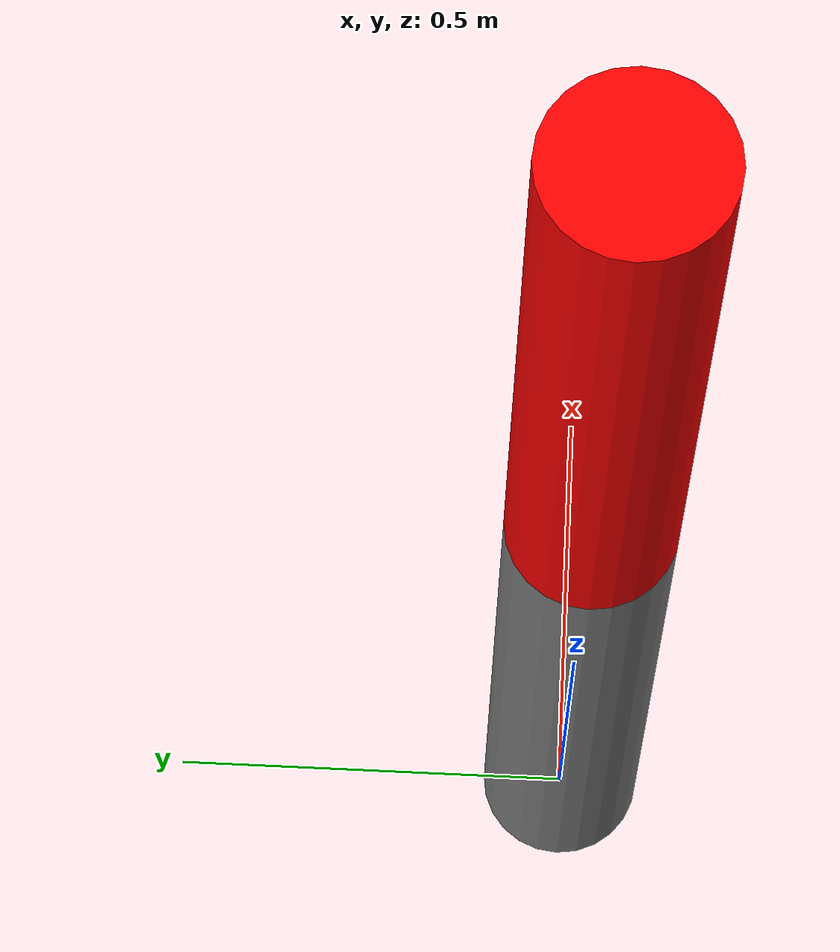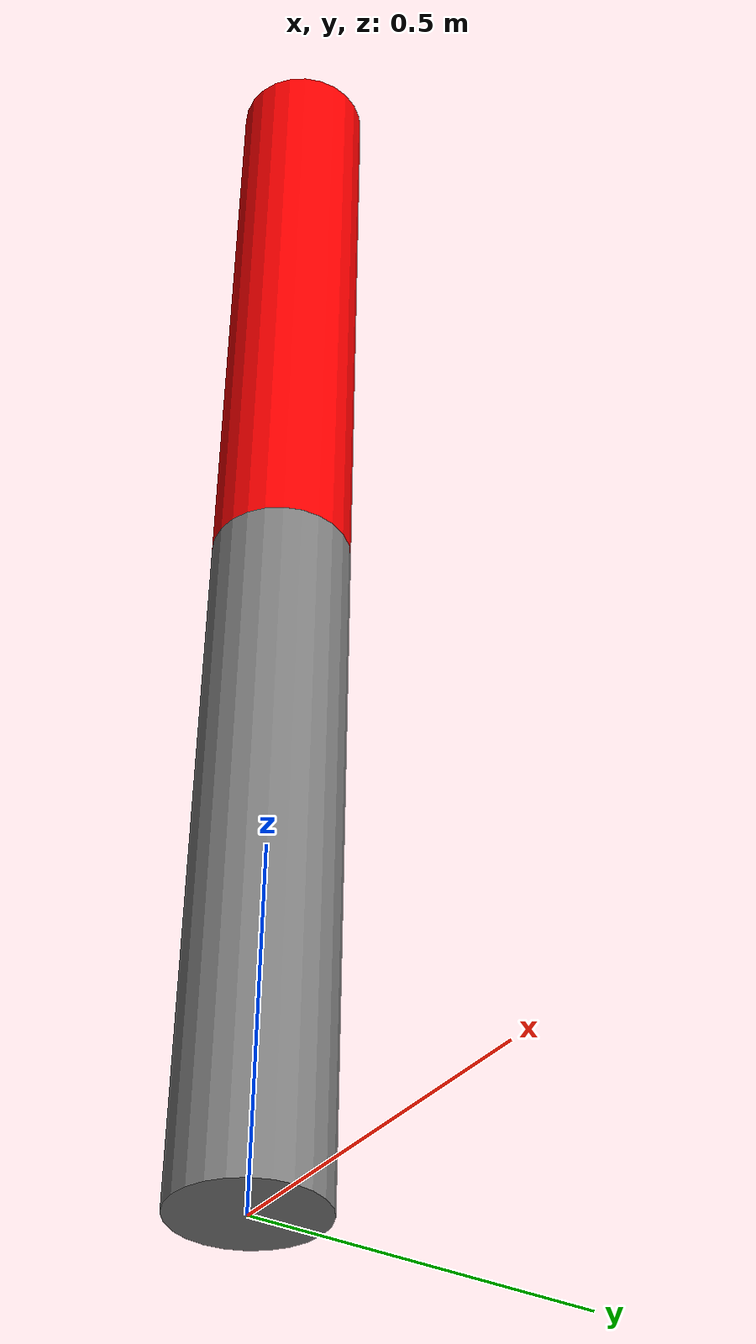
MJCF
<mujoco model="TwoLinkPendulum">
    <option timestep="0.01" solver="Newton" gravity="0 0 -10">
        <flag sensornoise="enable" energy="enable"/>
    </option>
    <compiler angle="degree"/>
    <size njmax="50" nconmax="10" nstack="200" nuserdata="10" nuser_actuator="10"/>

    <asset>
        <texture name="texplane" type="2d" builtin="checker" rgb1=".25 .25 .25" rgb2=".3 .3 .3" width="512" height="512" mark="cross" markrgb=".8 .8 .8"/>
        <material name="matplane" reflectance="0.3" texture="texplane" texrepeat="1 1" texuniform="true"/>
    </asset>
    <worldbody>
        <geom name="floor" pos="0 0 -5" size="0 0 1" type="plane" material="matplane"/>
        <light directional="true" diffuse=".8 .8 .8" specular=".2 .2 .2" pos="0 0 5" dir="0 0 -1"/>

        <body name="shoulder" pos="0 0 0.5" euler="0 0 0">
            <inertial pos="0 0 0" mass="1" diaginertia="1 1 1"/>
            <joint name="joint0" type="hinge" pos="0 0 -0.5" axis="1 0 0" frictionloss="0." limited="false" range="-180 180"/>
            <geom name="shoulder" type="cylinder"  size="0.1 0.5"/>
            <body name="arm" pos="0 0 1" euler="0 0 0">
                <inertial pos="0 0 0" mass="0.1" diaginertia="1 1 1"/>
                <joint name="joint1" type="hinge" pos="0 0 -0.5" axis="1 0 0" frictionloss="0." limited="false" range="-180 180"/>
                <geom name="arm" type="cylinder"  size="0.1 0.5" rgba="1 0 0 1"/>

            </body>
        </body>
    </worldbody>
    <actuator>
        <motor name="torque_servo_0" gear="1" joint="joint0" ctrllimited="true" ctrlrange="-1000 1000" />
        <motor name="torque_servo_1" gear="1" joint="joint1" ctrllimited="true" ctrlrange="-1000 1000" />

    </actuator>

    <sensor>
        <jointpos joint="joint0" noise="0.1"/>
        <jointvel joint="joint0" noise="0.1"/>
        <jointpos joint="joint1" noise="0.1"/>
        <jointvel joint="joint1" noise="0.1"/>
    </sensor>

</mujoco>
